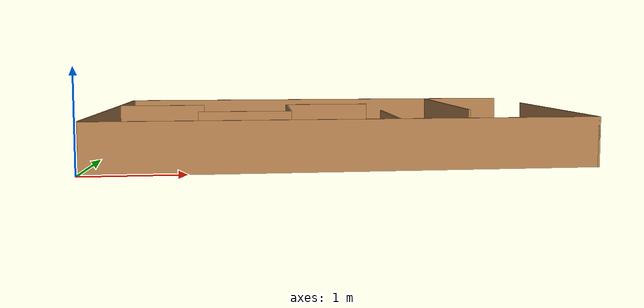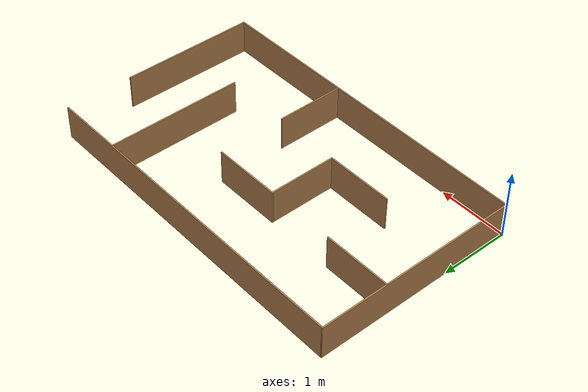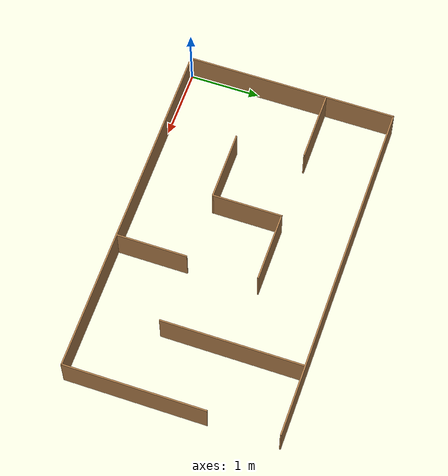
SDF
<?xml version='1.0'?>
<sdf version='1.6'>
  <model name='exp_02'>
    <pose frame=''>2.50066 1.48869 0 0 -0 0</pose>
    <link name='Wall_0'>
      <collision name='Wall_0_Collision'>
        <geometry>
          <box>
            <size>5 0.02 0.5</size>
          </box>
        </geometry>
        <pose frame=''>0 0 0.25 0 -0 0</pose>
      </collision>
      <visual name='Wall_0_Visual'>
        <pose frame=''>0 0 0.25 0 -0 0</pose>
        <geometry>
          <box>
            <size>5 0.02 0.5</size>
          </box>
        </geometry>
        <material>
          <script>
            <uri>file://media/materials/scripts/gazebo.material</uri>
            <name>Gazebo/Wood</name>
          </script>
          <ambient>1 1 1 1</ambient>
        </material>
        <meta>
          <layer>0</layer>
        </meta>
      </visual>
      <pose frame=''>0 -1.49 0 0 -0 0</pose>
    </link>
    <link name='Wall_10'>
      <collision name='Wall_10_Collision'>
        <geometry>
          <box>
            <size>1 0.02 0.5</size>
          </box>
        </geometry>
        <pose frame=''>0 0 0.25 0 -0 0</pose>
      </collision>
      <visual name='Wall_10_Visual'>
        <pose frame=''>0 0 0.25 0 -0 0</pose>
        <geometry>
          <box>
            <size>1 0.02 0.5</size>
          </box>
        </geometry>
        <material>
          <script>
            <uri>file://media/materials/scripts/gazebo.material</uri>
            <name>Gazebo/Wood</name>
          </script>
          <ambient>1 1 1 1</ambient>
        </material>
        <meta>
          <layer>0</layer>
        </meta>
      </visual>
      <pose frame=''>0.494335 -0.985437 0 0 -0 -1.5708</pose>
    </link>
    <link name='Wall_12'>
      <collision name='Wall_12_Collision'>
        <geometry>
          <box>
            <size>1 0.02 0.5</size>
          </box>
        </geometry>
        <pose frame=''>0 0 0.25 0 -0 0</pose>
      </collision>
      <visual name='Wall_12_Visual'>
        <pose frame=''>0 0 0.25 0 -0 0</pose>
        <geometry>
          <box>
            <size>1 0.02 0.5</size>
          </box>
        </geometry>
        <material>
          <script>
            <uri>file://media/materials/scripts/gazebo.material</uri>
            <name>Gazebo/Wood</name>
          </script>
          <ambient>1 1 1 1</ambient>
        </material>
        <meta>
          <layer>0</layer>
        </meta>
      </visual>
      <pose frame=''>-1.99508 0.511485 0 0 -0 0</pose>
    </link>
    <link name='Wall_14'>
      <collision name='Wall_14_Collision'>
        <geometry>
          <box>
            <size>1 0.02 0.5</size>
          </box>
        </geometry>
        <pose frame=''>0 0 0.25 0 -0 0</pose>
      </collision>
      <visual name='Wall_14_Visual'>
        <pose frame=''>0 0 0.25 0 -0 0</pose>
        <geometry>
          <box>
            <size>1 0.02 0.5</size>
          </box>
        </geometry>
        <material>
          <script>
            <uri>file://media/materials/scripts/gazebo.material</uri>
            <name>Gazebo/Wood</name>
          </script>
          <ambient>1 1 1 1</ambient>
        </material>
        <meta>
          <layer>0</layer>
        </meta>
      </visual>
      <pose frame=''>-0.00658 0.512285 0 0 -0 3.14159</pose>
    </link>
    <link name='Wall_16'>
      <collision name='Wall_16_Collision'>
        <geometry>
          <box>
            <size>1 0.02 0.5</size>
          </box>
        </geometry>
        <pose frame=''>0 0 0.25 0 -0 0</pose>
      </collision>
      <visual name='Wall_16_Visual'>
        <pose frame=''>0 0 0.25 0 -0 0</pose>
        <geometry>
          <box>
            <size>1 0.02 0.5</size>
          </box>
        </geometry>
        <material>
          <script>
            <uri>file://media/materials/scripts/gazebo.material</uri>
            <name>Gazebo/Wood</name>
          </script>
          <ambient>1 1 1 1</ambient>
        </material>
        <meta>
          <layer>0</layer>
        </meta>
      </visual>
      <pose frame=''>-0.49658 0.022285 0 0 -0 -1.5708</pose>
    </link>
    <link name='Wall_18'>
      <collision name='Wall_18_Collision'>
        <geometry>
          <box>
            <size>1 0.02 0.5</size>
          </box>
        </geometry>
        <pose frame=''>0 0 0.25 0 -0 0</pose>
      </collision>
      <visual name='Wall_18_Visual'>
        <pose frame=''>0 0 0.25 0 -0 0</pose>
        <geometry>
          <box>
            <size>1 0.02 0.5</size>
          </box>
        </geometry>
        <material>
          <script>
            <uri>file://media/materials/scripts/gazebo.material</uri>
            <name>Gazebo/Wood</name>
          </script>
          <ambient>1 1 1 1</ambient>
        </material>
        <meta>
          <layer>0</layer>
        </meta>
      </visual>
      <pose frame=''>-0.98658 -0.467715 0 0 -0 3.14159</pose>
    </link>
    <link name='Wall_2'>
      <collision name='Wall_2_Collision'>
        <geometry>
          <box>
            <size>3 0.02 0.5</size>
          </box>
        </geometry>
        <pose frame=''>0 0 0.25 0 -0 0</pose>
      </collision>
      <visual name='Wall_2_Visual'>
        <pose frame=''>0 0 0.25 0 -0 0</pose>
        <geometry>
          <box>
            <size>3 0.02 0.5</size>
          </box>
        </geometry>
        <material>
          <script>
            <uri>file://media/materials/scripts/gazebo.material</uri>
            <name>Gazebo/Wood</name>
          </script>
          <ambient>1 1 1 1</ambient>
        </material>
        <meta>
          <layer>0</layer>
        </meta>
      </visual>
      <pose frame=''>-2.49 0 0 0 -0 1.5708</pose>
    </link>
    <link name='Wall_4'>
      <collision name='Wall_4_Collision'>
        <geometry>
          <box>
            <size>5 0.02 0.5</size>
          </box>
        </geometry>
        <pose frame=''>0 0 0.25 0 -0 0</pose>
      </collision>
      <visual name='Wall_4_Visual'>
        <pose frame=''>0 0 0.25 0 -0 0</pose>
        <geometry>
          <box>
            <size>5 0.02 0.5</size>
          </box>
        </geometry>
        <material>
          <script>
            <uri>file://media/materials/scripts/gazebo.material</uri>
            <name>Gazebo/Wood</name>
          </script>
          <ambient>1 1 1 1</ambient>
        </material>
        <meta>
          <layer>0</layer>
        </meta>
      </visual>
      <pose frame=''>0 1.49 0 0 -0 0</pose>
    </link>
    <link name='Wall_6'>
      <collision name='Wall_6_Collision'>
        <geometry>
          <box>
            <size>2 0.02 0.5</size>
          </box>
        </geometry>
        <pose frame=''>0 0 0.25 0 -0 0</pose>
      </collision>
      <visual name='Wall_6_Visual'>
        <pose frame=''>0 0 0.25 0 -0 0</pose>
        <geometry>
          <box>
            <size>2 0.02 0.5</size>
          </box>
        </geometry>
        <material>
          <script>
            <uri>file://media/materials/scripts/gazebo.material</uri>
            <name>Gazebo/Wood</name>
          </script>
          <ambient>1 1 1 1</ambient>
        </material>
        <meta>
          <layer>0</layer>
        </meta>
      </visual>
      <pose frame=''>2.49 -0.5 0 0 -0 1.5708</pose>
    </link>
    <link name='Wall_8'>
      <collision name='Wall_8_Collision'>
        <geometry>
          <box>
            <size>2 0.02 0.5</size>
          </box>
        </geometry>
        <pose frame=''>0 0 0.25 0 -0 0</pose>
      </collision>
      <visual name='Wall_8_Visual'>
        <pose frame=''>0 0 0.25 0 -0 0</pose>
        <geometry>
          <box>
            <size>2 0.02 0.5</size>
          </box>
        </geometry>
        <material>
          <script>
            <uri>file://media/materials/scripts/gazebo.material</uri>
            <name>Gazebo/Wood</name>
          </script>
          <ambient>1 1 1 1</ambient>
        </material>
        <meta>
          <layer>0</layer>
        </meta>
      </visual>
      <pose frame=''>1.48973 0.486788 0 0 -0 -1.5708</pose>
    </link>
    <static>1</static>
  </model>
</sdf>
